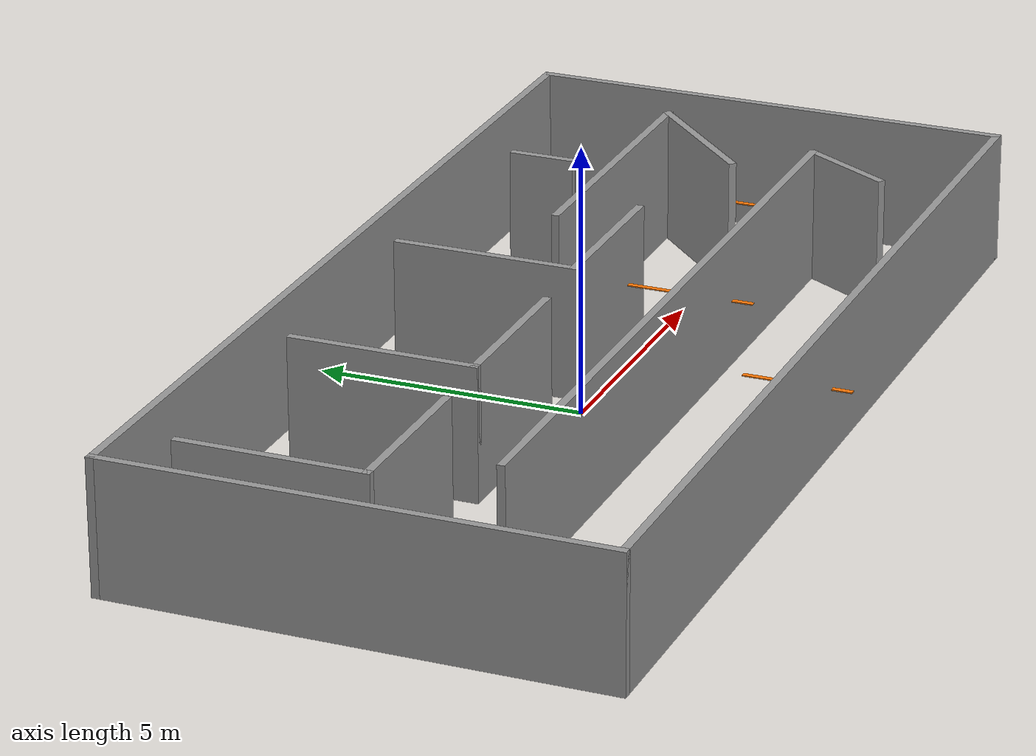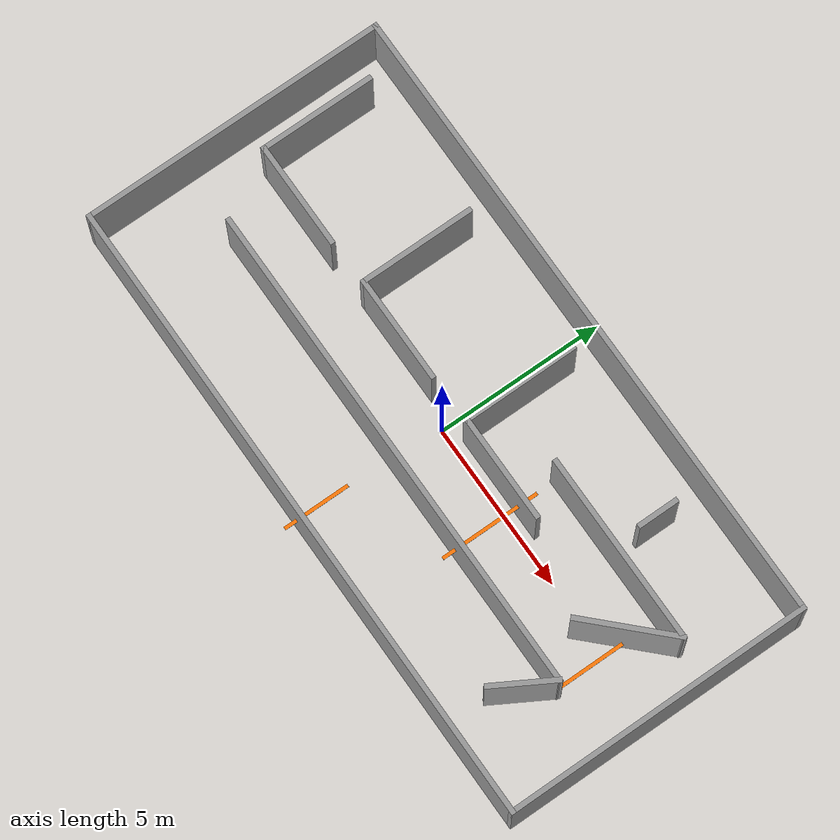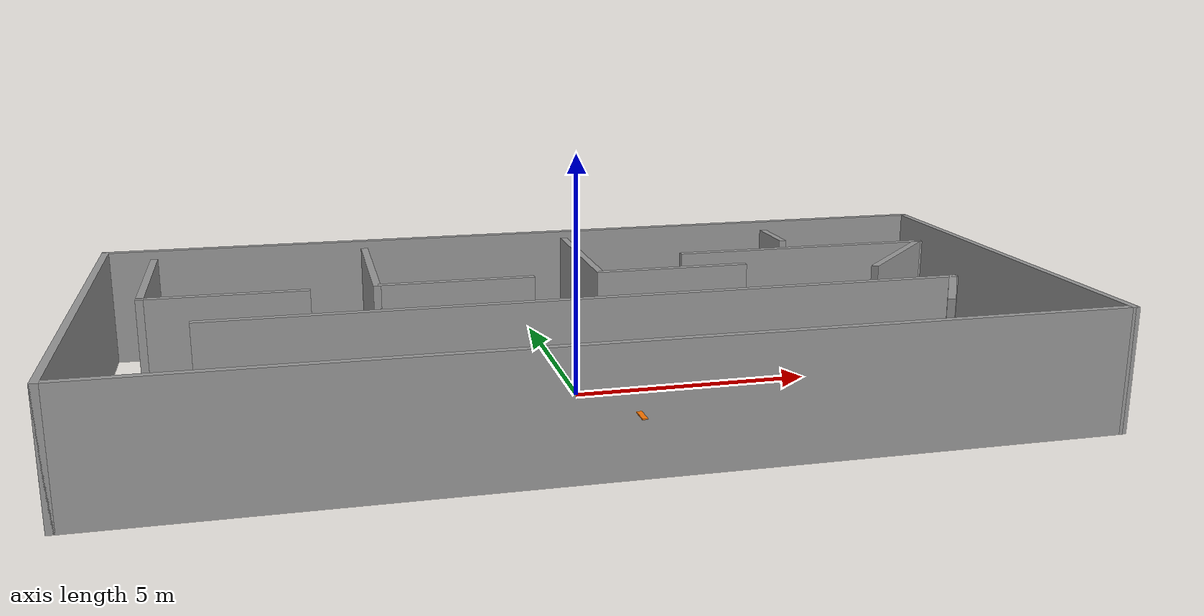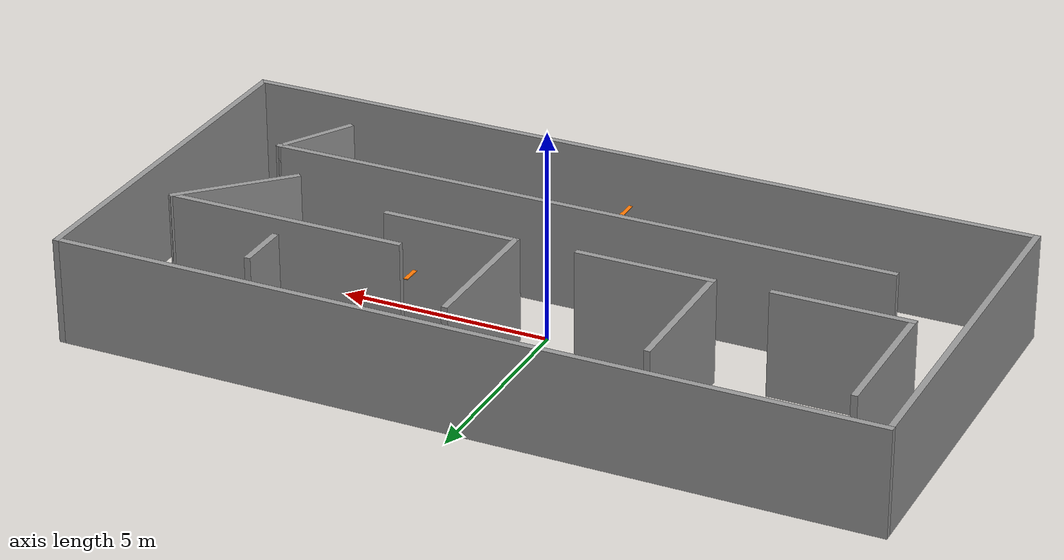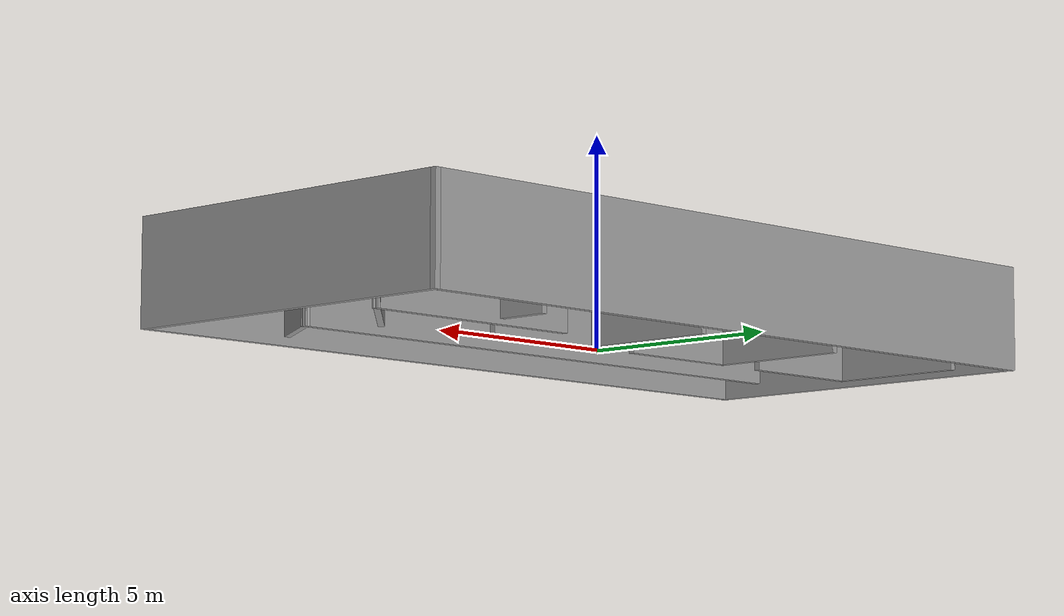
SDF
<?xml version='1.0'?>
<sdf version='1.7'>
  <model name='obstacle_course'>
    <pose>0 0 0 0 -0 0</pose>
    <link name='Wall_0'>
      <collision name='Wall_0_Collision'>
        <geometry>
          <box>
            <size>9.25 0.15 2.5</size>
          </box>
        </geometry>
        <pose>0 0 1.25 0 -0 0</pose>
      </collision>
      <visual name='Wall_0_Visual'>
        <pose>0 0 1.25 0 -0 0</pose>
        <geometry>
          <box>
            <size>9.25 0.15 2.5</size>
          </box>
        </geometry>
        <material>
          <script>
            <uri>file://media/materials/scripts/gazebo.material</uri>
            <name>Gazebo/Grey</name>
          </script>
          <ambient>1 1 1 1</ambient>
        </material>
        <meta>
          <layer>0</layer>
        </meta>
      </visual>
      <pose>-9.55 0 0 0 -0 -1.5708</pose>
    </link>
    <link name='Wall_1'>
      <collision name='Wall_1_Collision'>
        <geometry>
          <box>
            <size>19.25 0.15 2.5</size>
          </box>
        </geometry>
        <pose>0 0 1.25 0 -0 0</pose>
      </collision>
      <visual name='Wall_1_Visual'>
        <pose>0 0 1.25 0 -0 0</pose>
        <geometry>
          <box>
            <size>19.25 0.15 2.5</size>
          </box>
        </geometry>
        <material>
          <script>
            <uri>file://media/materials/scripts/gazebo.material</uri>
            <name>Gazebo/Grey</name>
          </script>
          <ambient>1 1 1 1</ambient>
        </material>
        <meta>
          <layer>0</layer>
        </meta>
      </visual>
      <pose>-0 -4.55 0 0 -0 0</pose>
    </link>
    <link name='Wall_11'>
      <collision name='Wall_11_Collision'>
        <geometry>
          <box>
            <size>3.5 0.15 2.5</size>
          </box>
        </geometry>
        <pose>0 0 1.25 0 -0 0</pose>
      </collision>
      <visual name='Wall_11_Visual'>
        <pose>0 0 1.25 0 -0 0</pose>
        <geometry>
          <box>
            <size>3.5 0.15 2.5</size>
          </box>
        </geometry>
        <material>
          <script>
            <uri>file://media/materials/scripts/gazebo.material</uri>
            <name>Gazebo/Grey</name>
          </script>
          <ambient>1 1 1 1</ambient>
        </material>
        <meta>
          <layer>0</layer>
        </meta>
      </visual>
      <pose>0.584627 2.04448 0 0 -0 -1.5708</pose>
    </link>
    <link name='Wall_12'>
      <collision name='Wall_12_Collision'>
        <geometry>
          <box>
            <size>3.25 0.15 2.5</size>
          </box>
        </geometry>
        <pose>0 0 1.25 0 -0 0</pose>
      </collision>
      <visual name='Wall_12_Visual'>
        <pose>0 0 1.25 0 -0 0</pose>
        <geometry>
          <box>
            <size>3.25 0.15 2.5</size>
          </box>
        </geometry>
        <material>
          <script>
            <uri>file://media/materials/scripts/gazebo.material</uri>
            <name>Gazebo/Grey</name>
          </script>
          <ambient>1 1 1 1</ambient>
        </material>
        <meta>
          <layer>0</layer>
        </meta>
      </visual>
      <pose>2.13463 0.369478 0 0 -0 0</pose>
    </link>
    <link name='Wall_14'>
      <collision name='Wall_14_Collision'>
        <geometry>
          <box>
            <size>15 0.15 2.5</size>
          </box>
        </geometry>
        <pose>0 0 1.25 0 -0 0</pose>
      </collision>
      <visual name='Wall_14_Visual'>
        <pose>0 0 1.25 0 -0 0</pose>
        <geometry>
          <box>
            <size>15 0.15 2.5</size>
          </box>
        </geometry>
        <material>
          <script>
            <uri>file://media/materials/scripts/gazebo.material</uri>
            <name>Gazebo/Grey</name>
          </script>
          <ambient>1 1 1 1</ambient>
        </material>
        <meta>
          <layer>0</layer>
        </meta>
      </visual>
      <pose>0.059227 -1.62769 0 0 -0 0</pose>
    </link>
    <link name='Wall_15'>
      <collision name='Wall_15_Collision'>
        <geometry>
          <box>
            <size>2 0.15 2.5</size>
          </box>
        </geometry>
        <pose>0 0 1.25 0 -0 0</pose>
      </collision>
      <visual name='Wall_15_Visual'>
        <pose>0 0 1.25 0 -0 0</pose>
        <geometry>
          <box>
            <size>2 0.15 2.5</size>
          </box>
        </geometry>
        <material>
          <script>
            <uri>file://media/materials/scripts/gazebo.material</uri>
            <name>Gazebo/Grey</name>
          </script>
          <ambient>1 1 1 1</ambient>
        </material>
        <meta>
          <layer>0</layer>
        </meta>
      </visual>
      <pose>7.02173 -2.42877 0 0 -0 -2.0944</pose>
    </link>
    <link name='Wall_17'>
      <collision name='Wall_17_Collision'>
        <geometry>
          <box>
            <size>5.75 0.15 2.5</size>
          </box>
        </geometry>
        <pose>0 0 1.25 0 -0 0</pose>
      </collision>
      <visual name='Wall_17_Visual'>
        <pose>0 0 1.25 0 -0 0</pose>
        <geometry>
          <box>
            <size>5.75 0.15 2.5</size>
          </box>
        </geometry>
        <material>
          <script>
            <uri>file://media/materials/scripts/gazebo.material</uri>
            <name>Gazebo/Grey</name>
          </script>
          <ambient>1 1 1 1</ambient>
        </material>
        <meta>
          <layer>0</layer>
        </meta>
      </visual>
      <pose>5.60089 1.60875 0 0 -0 0</pose>
    </link>
    <link name='Wall_18'>
      <collision name='Wall_18_Collision'>
        <geometry>
          <box>
            <size>3 0.15 2.5</size>
          </box>
        </geometry>
        <pose>0 0 1.25 0 -0 0</pose>
      </collision>
      <visual name='Wall_18_Visual'>
        <pose>0 0 1.25 0 -0 0</pose>
        <geometry>
          <box>
            <size>3 0.15 2.5</size>
          </box>
        </geometry>
        <material>
          <script>
            <uri>file://media/materials/scripts/gazebo.material</uri>
            <name>Gazebo/Grey</name>
          </script>
          <ambient>1 1 1 1</ambient>
        </material>
        <meta>
          <layer>0</layer>
        </meta>
      </visual>
      <pose>7.39326 0.601125 0 0 -0 -2.35619</pose>
    </link>
    <link name='Wall_2'>
      <collision name='Wall_2_Collision'>
        <geometry>
          <box>
            <size>9.25 0.15 2.5</size>
          </box>
        </geometry>
        <pose>0 0 1.25 0 -0 0</pose>
      </collision>
      <visual name='Wall_2_Visual'>
        <pose>0 0 1.25 0 -0 0</pose>
        <geometry>
          <box>
            <size>9.25 0.15 2.5</size>
          </box>
        </geometry>
        <material>
          <script>
            <uri>file://media/materials/scripts/gazebo.material</uri>
            <name>Gazebo/Grey</name>
          </script>
          <ambient>1 1 1 1</ambient>
        </material>
        <meta>
          <layer>0</layer>
        </meta>
      </visual>
      <pose>9.55 0 0 0 -0 1.5708</pose>
    </link>
    <link name='Wall_20'>
      <collision name='Wall_20_Collision'>
        <geometry>
          <box>
            <size>1.25 0.15 2.5</size>
          </box>
        </geometry>
        <pose>0 0 1.25 0 -0 0</pose>
      </collision>
      <visual name='Wall_20_Visual'>
        <pose>0 0 1.25 0 -0 0</pose>
        <geometry>
          <box>
            <size>1.25 0.15 2.5</size>
          </box>
        </geometry>
        <material>
          <script>
            <uri>file://media/materials/scripts/gazebo.material</uri>
            <name>Gazebo/Grey</name>
          </script>
          <ambient>1 1 1 1</ambient>
        </material>
        <meta>
          <layer>0</layer>
        </meta>
      </visual>
      <pose>5.40412 2.9584 0 0 -0 -1.5708</pose>
    </link>
    <link name='Wall_3'>
      <collision name='Wall_3_Collision'>
        <geometry>
          <box>
            <size>19.25 0.15 2.5</size>
          </box>
        </geometry>
        <pose>0 0 1.25 0 -0 0</pose>
      </collision>
      <visual name='Wall_3_Visual'>
        <pose>0 0 1.25 0 -0 0</pose>
        <geometry>
          <box>
            <size>19.25 0.15 2.5</size>
          </box>
        </geometry>
        <material>
          <script>
            <uri>file://media/materials/scripts/gazebo.material</uri>
            <name>Gazebo/Grey</name>
          </script>
          <ambient>1 1 1 1</ambient>
        </material>
        <meta>
          <layer>0</layer>
        </meta>
      </visual>
      <pose>-0 4.55 0 0 -0 3.14159</pose>
    </link>
    <link name='Wall_5'>
      <collision name='Wall_5_Collision'>
        <geometry>
          <box>
            <size>3.5 0.15 2.5</size>
          </box>
        </geometry>
        <pose>0 0 1.25 0 -0 0</pose>
      </collision>
      <visual name='Wall_5_Visual'>
        <pose>0 0 1.25 0 -0 0</pose>
        <geometry>
          <box>
            <size>3.5 0.15 2.5</size>
          </box>
        </geometry>
        <material>
          <script>
            <uri>file://media/materials/scripts/gazebo.material</uri>
            <name>Gazebo/Grey</name>
          </script>
          <ambient>1 1 1 1</ambient>
        </material>
        <meta>
          <layer>0</layer>
        </meta>
      </visual>
      <pose>-8.45632 1.90376 0 0 -0 -1.5708</pose>
    </link>
    <link name='Wall_6'>
      <collision name='Wall_6_Collision'>
        <geometry>
          <box>
            <size>3.25 0.15 2.5</size>
          </box>
        </geometry>
        <pose>0 0 1.25 0 -0 0</pose>
      </collision>
      <visual name='Wall_6_Visual'>
        <pose>0 0 1.25 0 -0 0</pose>
        <geometry>
          <box>
            <size>3.25 0.15 2.5</size>
          </box>
        </geometry>
        <material>
          <script>
            <uri>file://media/materials/scripts/gazebo.material</uri>
            <name>Gazebo/Grey</name>
          </script>
          <ambient>1 1 1 1</ambient>
        </material>
        <meta>
          <layer>0</layer>
        </meta>
      </visual>
      <pose>-6.90632 0.228763 0 0 -0 0</pose>
    </link>
    <link name='Wall_8'>
      <collision name='Wall_8_Collision'>
        <geometry>
          <box>
            <size>3.5 0.15 2.5</size>
          </box>
        </geometry>
        <pose>0 0 1.25 0 -0 0</pose>
      </collision>
      <visual name='Wall_8_Visual'>
        <pose>0 0 1.25 0 -0 0</pose>
        <geometry>
          <box>
            <size>3.5 0.15 2.5</size>
          </box>
        </geometry>
        <material>
          <script>
            <uri>file://media/materials/scripts/gazebo.material</uri>
            <name>Gazebo/Grey</name>
          </script>
          <ambient>1 1 1 1</ambient>
        </material>
        <meta>
          <layer>0</layer>
        </meta>
      </visual>
      <pose>-3.98861 1.97412 0 0 -0 -1.5708</pose>
    </link>
    <link name='Wall_9'>
      <collision name='Wall_9_Collision'>
        <geometry>
          <box>
            <size>3.25 0.15 2.5</size>
          </box>
        </geometry>
        <pose>0 0 1.25 0 -0 0</pose>
      </collision>
      <visual name='Wall_9_Visual'>
        <pose>0 0 1.25 0 -0 0</pose>
        <geometry>
          <box>
            <size>3.25 0.15 2.5</size>
          </box>
        </geometry>
        <material>
          <script>
            <uri>file://media/materials/scripts/gazebo.material</uri>
            <name>Gazebo/Grey</name>
          </script>
          <ambient>1 1 1 1</ambient>
        </material>
        <meta>
          <layer>0</layer>
        </meta>
      </visual>
      <pose>-2.43861 0.299121 0 0 -0 0</pose>
    </link>
    <link name='Stop_zone_1'>
      <collision name='Stop_zone_1_collision'>
        <geometry>
          <box>
            <size>0.0 0.0 0.0</size>
          </box>
        </geometry>
        <pose>0 0 1.25 0 -0 0</pose>
      </collision>
      <visual name='Stop_zone_1_Visual'>
        <pose>0 0 1.25 0 -0 0</pose>
        <geometry>
          <box>
            <size>0.1 2 0.02</size>
          </box>
        </geometry>
        <material>
          <script>
            <uri>file://media/materials/scripts/gazebo.material</uri>
            <name>Gazebo/Grey</name>
          </script>
          <ambient>0.996078 0.47451 0.0196078 1</ambient>
        </material>
        <meta>
          <layer>0</layer>
        </meta>
      </visual>
      <pose>-0 -4 0 0 -0 0</pose>
    </link>
    <link name='Stop_zone_2'>
      <collision name='Stop_zone_2_collision'>
        <geometry>
          <box>
            <size>0.0 0.0 0.0</size>
          </box>
        </geometry>
        <pose>0 0 1.25 0 -0 0</pose>
      </collision>
      <visual name='Stop_zone_2_Visual'>
        <pose>0 0 1.25 0 -0 0</pose>
        <geometry>
          <box>
            <size>0.1 3 0.02</size>
          </box>
        </geometry>
        <material>
          <script>
            <uri>file://media/materials/scripts/gazebo.material</uri>
            <name>Gazebo/Grey</name>
          </script>
          <ambient>0.996078 0.47451 0.0196078 1</ambient>
        </material>
        <meta>
          <layer>0</layer>
        </meta>
      </visual>
      <pose>3.0 -0.6 0 0 -0 0</pose>
    </link>
    <link name='Stop_zone_3'>
      <collision name='Stop_zone_3_collision'>
        <geometry>
          <box>
            <size>0.0 0.0 0.0</size>
          </box>
        </geometry>
        <pose>0 0 1.25 0 -0 0</pose>
      </collision>
      <visual name='Stop_zone_3_Visual'>
        <pose>0 0 1.25 0 -0 0</pose>
        <geometry>
          <box>
            <size>0.1 2 0.02</size>
          </box>
        </geometry>
        <material>
          <script>
            <uri>file://media/materials/scripts/gazebo.material</uri>
            <name>Gazebo/Grey</name>
          </script>
          <ambient>0.996078 0.47451 0.0196078 1</ambient>
        </material>
        <meta>
          <layer>0</layer>
        </meta>
      </visual>
      <pose>7.5 -0.6 0 0 -0 0</pose>
    </link>
    <static>1</static>
  </model>
</sdf>
